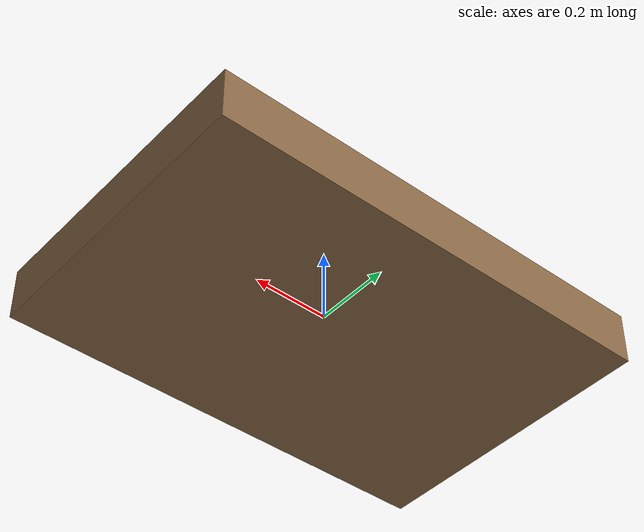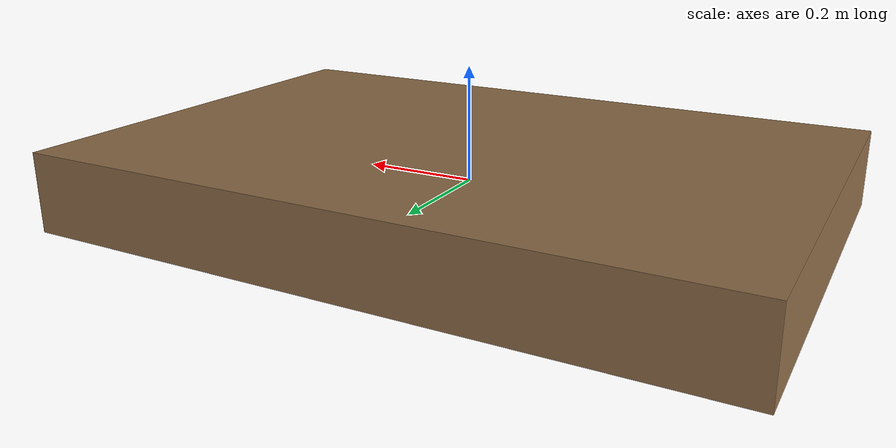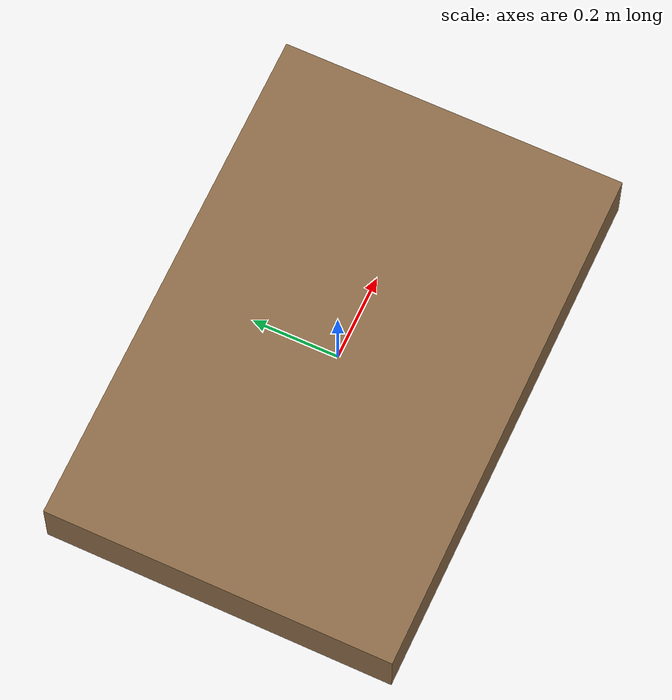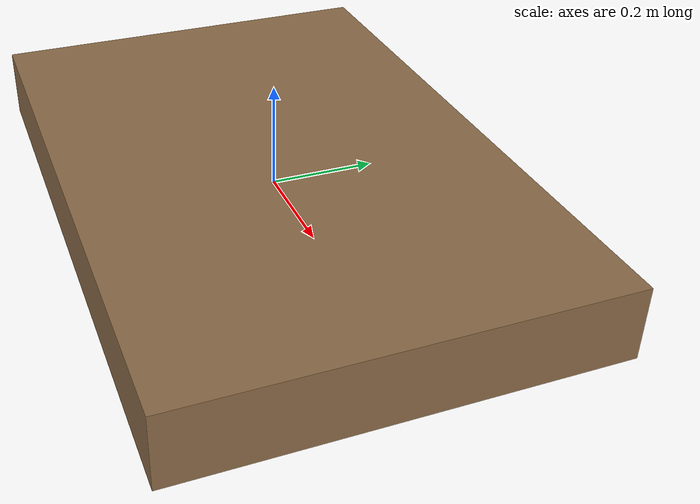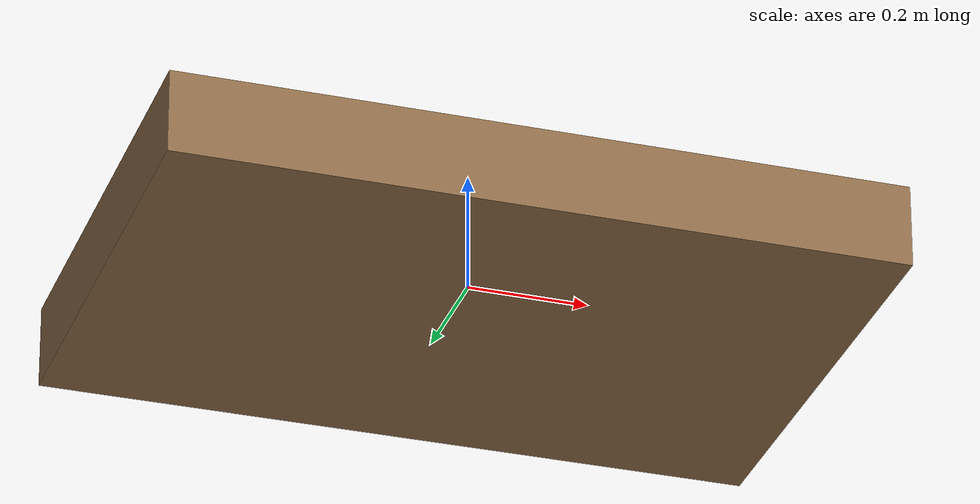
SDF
<?xml version="1.0"?>
<sdf version="1.6">
  <model name="obstacle_pallet">
    <static>true</static>
    <link name="link">
      <collision name="collision">
        <geometry><box><size>1.20 0.80 0.14</size></box></geometry>
        <surface>
          <friction><ode><mu>0.7</mu><mu2>0.7</mu2></ode></friction>
          <contact><ode/></contact>
        </surface>
      </collision>
      <visual name="visual">
        <geometry><box><size>1.20 0.80 0.14</size></box></geometry>
        <material>
          <!-- Weathered wood colour -->
          <ambient>0.55 0.42 0.28 1</ambient>
          <diffuse>0.55 0.42 0.28 1</diffuse>
          <specular>0.02 0.02 0.02 1</specular>
        </material>
      </visual>
    </link>
  </model>
</sdf>
